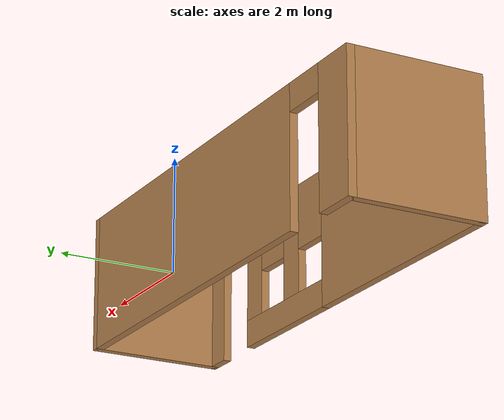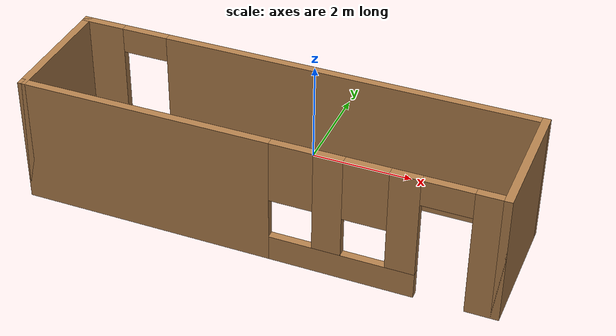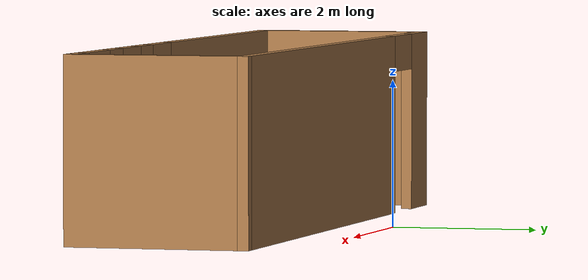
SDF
<?xml version='1.0'?>
<sdf version='1.6'>
  <model name='sala'>
    <pose frame=''>0.085 -1.935 0 0 -0 0</pose>
    <link name='Wall_0'>
      <collision name='Wall_0_Collision'>
        <geometry>
          <box>
            <size>2.5 0.15 2.5</size>
          </box>
        </geometry>
        <pose frame=''>0 0 1.25 0 -0 0</pose>
      </collision>
      <visual name='Wall_0_Visual'>
        <pose frame=''>0 0 1.25 0 -0 0</pose>
        <geometry>
          <box>
            <size>2.5 0.15 2.5</size>
          </box>
        </geometry>
        <material>
          <script>
            <uri>file://media/materials/scripts/gazebo.material</uri>
            <name>Gazebo/Wood</name>
          </script>
          <ambient>1 1 1 1</ambient>
        </material>
        <meta>
          <layer>0</layer>
        </meta>
      </visual>
      <pose frame=''>-4.425 -0 0 0 -0 -1.5708</pose>
    </link>
    <link name='Wall_1'>
      <pose frame=''>-0 -1.175 0 0 -0 0</pose>
      <visual name='Wall_1_Visual_0'>
        <pose frame=''>-2.0925 0 1.25 0 -0 0</pose>
        <geometry>
          <box>
            <size>4.815 0.15 2.5</size>
          </box>
        </geometry>
        <material>
          <script>
            <uri>file://media/materials/scripts/gazebo.material</uri>
            <name>Gazebo/Wood</name>
          </script>
          <ambient>1 1 1 1</ambient>
        </material>
        <meta>
          <layer>0</layer>
        </meta>
      </visual>
      <collision name='Wall_1_Collision_0'>
        <geometry>
          <box>
            <size>4.815 0.15 2.5</size>
          </box>
        </geometry>
        <pose frame=''>-2.0925 0 1.25 0 -0 0</pose>
      </collision>
      <visual name='Wall_1_Visual_1'>
        <pose frame=''>4.1925 0 1.25 0 -0 0</pose>
        <geometry>
          <box>
            <size>0.615 0.15 2.5</size>
          </box>
        </geometry>
        <material>
          <script>
            <uri>file://media/materials/scripts/gazebo.material</uri>
            <name>Gazebo/Wood</name>
          </script>
          <ambient>1 1 1 1</ambient>
        </material>
        <meta>
          <layer>0</layer>
        </meta>
      </visual>
      <collision name='Wall_1_Collision_1'>
        <geometry>
          <box>
            <size>0.615 0.15 2.5</size>
          </box>
        </geometry>
        <pose frame=''>4.1925 0 1.25 0 -0 0</pose>
      </collision>
      <visual name='Wall_1_Visual_2'>
        <pose frame=''>1.65 0 0.25 0 -0 0</pose>
        <geometry>
          <box>
            <size>2.67 0.15 0.5</size>
          </box>
        </geometry>
        <material>
          <script>
            <uri>file://media/materials/scripts/gazebo.material</uri>
            <name>Gazebo/Wood</name>
          </script>
          <ambient>1 1 1 1</ambient>
        </material>
        <meta>
          <layer>0</layer>
        </meta>
      </visual>
      <collision name='Wall_1_Collision_2'>
        <geometry>
          <box>
            <size>2.67 0.15 0.5</size>
          </box>
        </geometry>
        <pose frame=''>1.65 0 0.25 0 -0 0</pose>
      </collision>
      <visual name='Wall_1_Visual_3'>
        <pose frame=''>1.38 0 1.5 0 -0 0</pose>
        <geometry>
          <box>
            <size>0.53 0.15 2</size>
          </box>
        </geometry>
        <material>
          <script>
            <uri>file://media/materials/scripts/gazebo.material</uri>
            <name>Gazebo/Wood</name>
          </script>
          <ambient>1 1 1 1</ambient>
        </material>
        <meta>
          <layer>0</layer>
        </meta>
      </visual>
      <collision name='Wall_1_Collision_3'>
        <geometry>
          <box>
            <size>0.53 0.15 2</size>
          </box>
        </geometry>
        <pose frame=''>1.38 0 1.5 0 -0 0</pose>
      </collision>
      <visual name='Wall_1_Visual_4'>
        <pose frame=''>2.715 0 1.5 0 -0 0</pose>
        <geometry>
          <box>
            <size>0.54 0.15 2</size>
          </box>
        </geometry>
        <material>
          <script>
            <uri>file://media/materials/scripts/gazebo.material</uri>
            <name>Gazebo/Wood</name>
          </script>
          <ambient>1 1 1 1</ambient>
        </material>
        <meta>
          <layer>0</layer>
        </meta>
      </visual>
      <collision name='Wall_1_Collision_4'>
        <geometry>
          <box>
            <size>0.54 0.15 2</size>
          </box>
        </geometry>
        <pose frame=''>2.715 0 1.5 0 -0 0</pose>
      </collision>
      <visual name='Wall_1_Visual_5'>
        <pose frame=''>0.715 0 1.9 0 -0 0</pose>
        <geometry>
          <box>
            <size>0.8 0.15 1.2</size>
          </box>
        </geometry>
        <material>
          <script>
            <uri>file://media/materials/scripts/gazebo.material</uri>
            <name>Gazebo/Wood</name>
          </script>
          <ambient>1 1 1 1</ambient>
        </material>
        <meta>
          <layer>0</layer>
        </meta>
      </visual>
      <collision name='Wall_1_Collision_5'>
        <geometry>
          <box>
            <size>0.8 0.15 1.2</size>
          </box>
        </geometry>
        <pose frame=''>0.715 0 1.9 0 -0 0</pose>
      </collision>
      <visual name='Wall_1_Visual_6'>
        <pose frame=''>2.045 0 1.9 0 -0 0</pose>
        <geometry>
          <box>
            <size>0.8 0.15 1.2</size>
          </box>
        </geometry>
        <material>
          <script>
            <uri>file://media/materials/scripts/gazebo.material</uri>
            <name>Gazebo/Wood</name>
          </script>
          <ambient>1 1 1 1</ambient>
        </material>
        <meta>
          <layer>0</layer>
        </meta>
      </visual>
      <collision name='Wall_1_Collision_6'>
        <geometry>
          <box>
            <size>0.8 0.15 1.2</size>
          </box>
        </geometry>
        <pose frame=''>2.045 0 1.9 0 -0 0</pose>
      </collision>
      <visual name='Wall_1_Visual_7'>
        <pose frame=''>3.435 0 2.25 0 -0 0</pose>
        <geometry>
          <box>
            <size>0.9 0.15 0.5</size>
          </box>
        </geometry>
        <material>
          <script>
            <uri>file://media/materials/scripts/gazebo.material</uri>
            <name>Gazebo/Wood</name>
          </script>
          <ambient>1 1 1 1</ambient>
        </material>
        <meta>
          <layer>0</layer>
        </meta>
      </visual>
      <collision name='Wall_1_Collision_7'>
        <geometry>
          <box>
            <size>0.9 0.15 0.5</size>
          </box>
        </geometry>
        <pose frame=''>3.435 0 2.25 0 -0 0</pose>
      </collision>
    </link>
    <link name='Wall_2'>
      <collision name='Wall_2_Collision'>
        <geometry>
          <box>
            <size>2.5 0.15 2.5</size>
          </box>
        </geometry>
        <pose frame=''>0 0 1.25 0 -0 0</pose>
      </collision>
      <visual name='Wall_2_Visual'>
        <pose frame=''>0 0 1.25 0 -0 0</pose>
        <geometry>
          <box>
            <size>2.5 0.15 2.5</size>
          </box>
        </geometry>
        <material>
          <script>
            <uri>file://media/materials/scripts/gazebo.material</uri>
            <name>Gazebo/Wood</name>
          </script>
          <ambient>1 1 1 1</ambient>
        </material>
        <meta>
          <layer>0</layer>
        </meta>
      </visual>
      <pose frame=''>4.425 -0 0 0 -0 1.5708</pose>
    </link>
    <link name='Wall_3'>
      <pose frame=''>-0 1.175 0 0 -0 3.14159</pose>
      <visual name='Wall_3_Visual_0'>
        <pose frame=''>-0.8825 0 1.25 0 -0 0</pose>
        <geometry>
          <box>
            <size>7.235 0.15 2.5</size>
          </box>
        </geometry>
        <material>
          <script>
            <uri>file://media/materials/scripts/gazebo.material</uri>
            <name>Gazebo/Wood</name>
          </script>
          <ambient>1 1 1 1</ambient>
        </material>
        <meta>
          <layer>0</layer>
        </meta>
      </visual>
      <collision name='Wall_3_Collision_0'>
        <geometry>
          <box>
            <size>7.235 0.15 2.5</size>
          </box>
        </geometry>
        <pose frame=''>-0.8825 0 1.25 0 -0 0</pose>
      </collision>
      <visual name='Wall_3_Visual_1'>
        <pose frame=''>4.0675 0 1.25 0 -0 0</pose>
        <geometry>
          <box>
            <size>0.865 0.15 2.5</size>
          </box>
        </geometry>
        <material>
          <script>
            <uri>file://media/materials/scripts/gazebo.material</uri>
            <name>Gazebo/Wood</name>
          </script>
          <ambient>1 1 1 1</ambient>
        </material>
        <meta>
          <layer>0</layer>
        </meta>
      </visual>
      <collision name='Wall_3_Collision_1'>
        <geometry>
          <box>
            <size>0.865 0.15 2.5</size>
          </box>
        </geometry>
        <pose frame=''>4.0675 0 1.25 0 -0 0</pose>
      </collision>
      <visual name='Wall_3_Visual_2'>
        <pose frame=''>3.185 0 2.25 0 -0 0</pose>
        <geometry>
          <box>
            <size>0.9 0.15 0.5</size>
          </box>
        </geometry>
        <material>
          <script>
            <uri>file://media/materials/scripts/gazebo.material</uri>
            <name>Gazebo/Wood</name>
          </script>
          <ambient>1 1 1 1</ambient>
        </material>
        <meta>
          <layer>0</layer>
        </meta>
      </visual>
      <collision name='Wall_3_Collision_2'>
        <geometry>
          <box>
            <size>0.9 0.15 0.5</size>
          </box>
        </geometry>
        <pose frame=''>3.185 0 2.25 0 -0 0</pose>
      </collision>
    </link>
    <static>1</static>
  </model>
</sdf>
